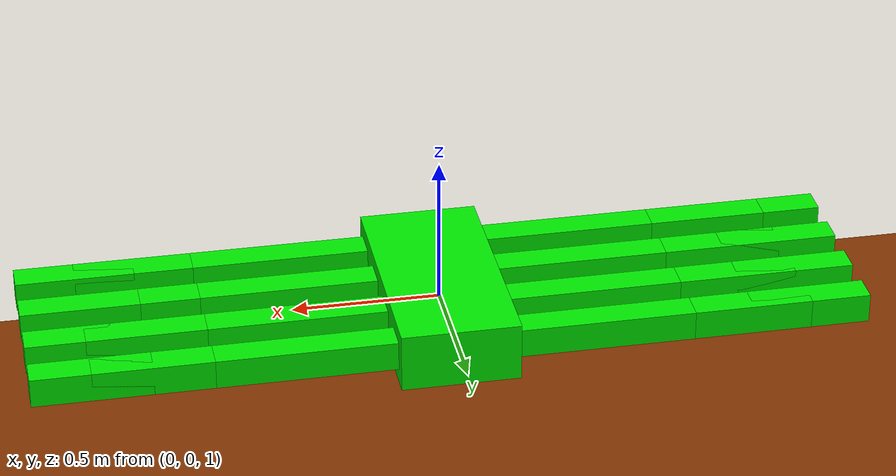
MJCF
<mujoco>
    <worldbody>
        <light diffuse=".5 .5 .5" pos="0 0 2" dir="0 -1 0" />
        <geom type="plane" size="10 10 0.1" rgba=".5 0.2 0 1" />

        <body name="spider" pos="0 0 1" euler="0 0 0">
            <joint type="free" axis="0 0 0" pos="0 0 0" />
            <body name="body" pos="0 0 0" euler="0 0 0">
                <geom type="box" size=".2 .4 .1" rgba="0 .9 0 1" mass="1" />
            </body>

            <body name="leg1" pos=".5 -.3 0" euler="0 -90 0">
                <joint name="j1" type="hinge" axis="0 1 0" pos="0 0 .25" range="-45 45" />
                <geom type="box" size=".05 .05 .3" rgba="0 .9 0 1" mass="1" />
            <body name="leg1_segment0" pos="0 0 1.5" euler="0 0 0"><joint name="j_leg1_segment0" type="hinge" axis="0 1 0" pos="0 0 -.25" range="-10 10" /><geom type="box" size=".05 .05 .2" rgba="0 .9 0 1" mass="1" /></body><body name="leg1_segment1" pos="0 0 1.7" euler="0 0 0"><joint name="j_leg1_segment1" type="hinge" axis="0 1 0" pos="0 0 -.25" range="-10 10" /><geom type="box" size=".05 .05 .2" rgba="0 .9 0 1" mass="1" /></body></body>

            <body name="leg2" pos="-.5 -.3 0" euler="0 90 0">
                <joint name="j2" type="hinge" axis="0 1 0" pos="0 0 .25" range="-45 45" />
                <geom type="box" size=".05 .05 .3" rgba="0 .9 0 1" mass="1" />
            <body name="leg2_segment0" pos="0 0 1.5" euler="0 0 0"><joint name="j_leg2_segment0" type="hinge" axis="0 1 0" pos="0 0 -.25" range="-10 10" /><geom type="box" size=".05 .05 .2" rgba="0 .9 0 1" mass="1" /></body><body name="leg2_segment1" pos="0 0 1.7" euler="0 0 0"><joint name="j_leg2_segment1" type="hinge" axis="0 1 0" pos="0 0 -.25" range="-10 10" /><geom type="box" size=".05 .05 .2" rgba="0 .9 0 1" mass="1" /></body></body>

            <body name="leg3" pos=".5 -.1 0" euler="0 -90 0">
                <joint name="j3" type="hinge" axis="0 1 0" pos="0 0 .25" range="-45 45" />
                <geom type="box" size=".05 .05 .3" rgba="0 .9 0 1" mass="1" />
            <body name="leg3_segment0" pos="0 0 1.5" euler="0 0 0"><joint name="j_leg3_segment0" type="hinge" axis="0 1 0" pos="0 0 -.25" range="-10 10" /><geom type="box" size=".05 .05 .2" rgba="0 .9 0 1" mass="1" /></body><body name="leg3_segment1" pos="0 0 1.7" euler="0 0 0"><joint name="j_leg3_segment1" type="hinge" axis="0 1 0" pos="0 0 -.25" range="-10 10" /><geom type="box" size=".05 .05 .2" rgba="0 .9 0 1" mass="1" /></body></body>

            <body name="leg4" pos="-.5 -.1 0" euler="0 90 0">
                <joint name="j4" type="hinge" axis="0 1 0" pos="0 0 .25" range="-45 45" />
                <geom type="box" size=".05 .05 .3" rgba="0 .9 0 1" mass="1" />
            <body name="leg4_segment0" pos="0 0 1.5" euler="0 0 0"><joint name="j_leg4_segment0" type="hinge" axis="0 1 0" pos="0 0 -.25" range="-10 10" /><geom type="box" size=".05 .05 .2" rgba="0 .9 0 1" mass="1" /></body><body name="leg4_segment1" pos="0 0 1.7" euler="0 0 0"><joint name="j_leg4_segment1" type="hinge" axis="0 1 0" pos="0 0 -.25" range="-10 10" /><geom type="box" size=".05 .05 .2" rgba="0 .9 0 1" mass="1" /></body></body>

            <body name="leg5" pos=".5 .1 0" euler="0 -90 0">
                <joint name="j5" type="hinge" axis="0 1 0" pos="0 0 .25" range="-45 45" />
                <geom type="box" size=".05 .05 .3" rgba="0 .9 0 1" mass="1" />
            <body name="leg5_segment0" pos="0 0 1.5" euler="0 0 0"><joint name="j_leg5_segment0" type="hinge" axis="0 1 0" pos="0 0 -.25" range="-10 10" /><geom type="box" size=".05 .05 .2" rgba="0 .9 0 1" mass="1" /></body><body name="leg5_segment1" pos="0 0 1.7" euler="0 0 0"><joint name="j_leg5_segment1" type="hinge" axis="0 1 0" pos="0 0 -.25" range="-10 10" /><geom type="box" size=".05 .05 .2" rgba="0 .9 0 1" mass="1" /></body></body>

            <body name="leg6" pos="-.5 .1 0" euler="0 90 0">
                <joint name="j6" type="hinge" axis="0 1 0" pos="0 0 .25" range="-45 45" />
                <geom type="box" size=".05 .05 .3" rgba="0 .9 0 1" mass="1" />
            <body name="leg6_segment0" pos="0 0 1.5" euler="0 0 0"><joint name="j_leg6_segment0" type="hinge" axis="0 1 0" pos="0 0 -.25" range="-10 10" /><geom type="box" size=".05 .05 .2" rgba="0 .9 0 1" mass="1" /></body><body name="leg6_segment1" pos="0 0 1.7" euler="0 0 0"><joint name="j_leg6_segment1" type="hinge" axis="0 1 0" pos="0 0 -.25" range="-10 10" /><geom type="box" size=".05 .05 .2" rgba="0 .9 0 1" mass="1" /></body></body>

            <body name="leg7" pos=".5 .3 0" euler="0 -90 0">
                <joint name="j7" type="hinge" axis="0 1 0" pos="0 0 .25" range="-45 45" />
                <geom type="box" size=".05 .05 .3" rgba="0 .9 0 1" mass="1" />
            <body name="leg7_segment0" pos="0 0 1.5" euler="0 0 0"><joint name="j_leg7_segment0" type="hinge" axis="0 1 0" pos="0 0 -.25" range="-10 10" /><geom type="box" size=".05 .05 .2" rgba="0 .9 0 1" mass="1" /></body><body name="leg7_segment1" pos="0 0 1.7" euler="0 0 0"><joint name="j_leg7_segment1" type="hinge" axis="0 1 0" pos="0 0 -.25" range="-10 10" /><geom type="box" size=".05 .05 .2" rgba="0 .9 0 1" mass="1" /></body></body>

            <body name="leg8" pos="-.5 .3 0" euler="0 90 0">
                <joint name="j8" type="hinge" axis="0 1 0" pos="0 0 .25" range="-45 45" />
                <geom type="box" size=".05 .05 .3" rgba="0 .9 0 1" mass="1" />
            <body name="leg8_segment0" pos="0 0 1.5" euler="0 0 0"><joint name="j_leg8_segment0" type="hinge" axis="0 1 0" pos="0 0 -.25" range="-10 10" /><geom type="box" size=".05 .05 .2" rgba="0 .9 0 1" mass="1" /></body><body name="leg8_segment1" pos="0 0 1.7" euler="0 0 0"><joint name="j_leg8_segment1" type="hinge" axis="0 1 0" pos="0 0 -.25" range="-10 10" /><geom type="box" size=".05 .05 .2" rgba="0 .9 0 1" mass="1" /></body></body>
        </body>
    </worldbody>

    <actuator>
        <motor joint="j1" name="m1" gear="10" ctrllimited="true" ctrlrange="-5 5" />
        <motor joint="j2" name="m2" gear="10" ctrllimited="true" ctrlrange="-5 5" />
        <motor joint="j3" name="m3" gear="10" ctrllimited="true" ctrlrange="-5 5" />
        <motor joint="j4" name="m4" gear="10" ctrllimited="true" ctrlrange="-5 5" />
        <motor joint="j5" name="m5" gear="10" ctrllimited="true" ctrlrange="-5 5" />
        <motor joint="j6" name="m6" gear="10" ctrllimited="true" ctrlrange="-5 5" />
        <motor joint="j7" name="m7" gear="10" ctrllimited="true" ctrlrange="-5 5" />
        <motor joint="j8" name="m8" gear="10" ctrllimited="true" ctrlrange="-5 5" />
    <motor joint="j_leg1_segment0" name="m_leg1_segment0" gear="10" ctrllimited="true" ctrlrange="-10 10" /><motor joint="j_leg1_segment1" name="m_leg1_segment1" gear="10" ctrllimited="true" ctrlrange="-10 10" /><motor joint="j_leg2_segment0" name="m_leg2_segment0" gear="10" ctrllimited="true" ctrlrange="-10 10" /><motor joint="j_leg2_segment1" name="m_leg2_segment1" gear="10" ctrllimited="true" ctrlrange="-10 10" /><motor joint="j_leg3_segment0" name="m_leg3_segment0" gear="10" ctrllimited="true" ctrlrange="-10 10" /><motor joint="j_leg3_segment1" name="m_leg3_segment1" gear="10" ctrllimited="true" ctrlrange="-10 10" /><motor joint="j_leg4_segment0" name="m_leg4_segment0" gear="10" ctrllimited="true" ctrlrange="-10 10" /><motor joint="j_leg4_segment1" name="m_leg4_segment1" gear="10" ctrllimited="true" ctrlrange="-10 10" /><motor joint="j_leg5_segment0" name="m_leg5_segment0" gear="10" ctrllimited="true" ctrlrange="-10 10" /><motor joint="j_leg5_segment1" name="m_leg5_segment1" gear="10" ctrllimited="true" ctrlrange="-10 10" /><motor joint="j_leg6_segment0" name="m_leg6_segment0" gear="10" ctrllimited="true" ctrlrange="-10 10" /><motor joint="j_leg6_segment1" name="m_leg6_segment1" gear="10" ctrllimited="true" ctrlrange="-10 10" /><motor joint="j_leg7_segment0" name="m_leg7_segment0" gear="10" ctrllimited="true" ctrlrange="-10 10" /><motor joint="j_leg7_segment1" name="m_leg7_segment1" gear="10" ctrllimited="true" ctrlrange="-10 10" /><motor joint="j_leg8_segment0" name="m_leg8_segment0" gear="10" ctrllimited="true" ctrlrange="-10 10" /><motor joint="j_leg8_segment1" name="m_leg8_segment1" gear="10" ctrllimited="true" ctrlrange="-10 10" /></actuator>
</mujoco>
